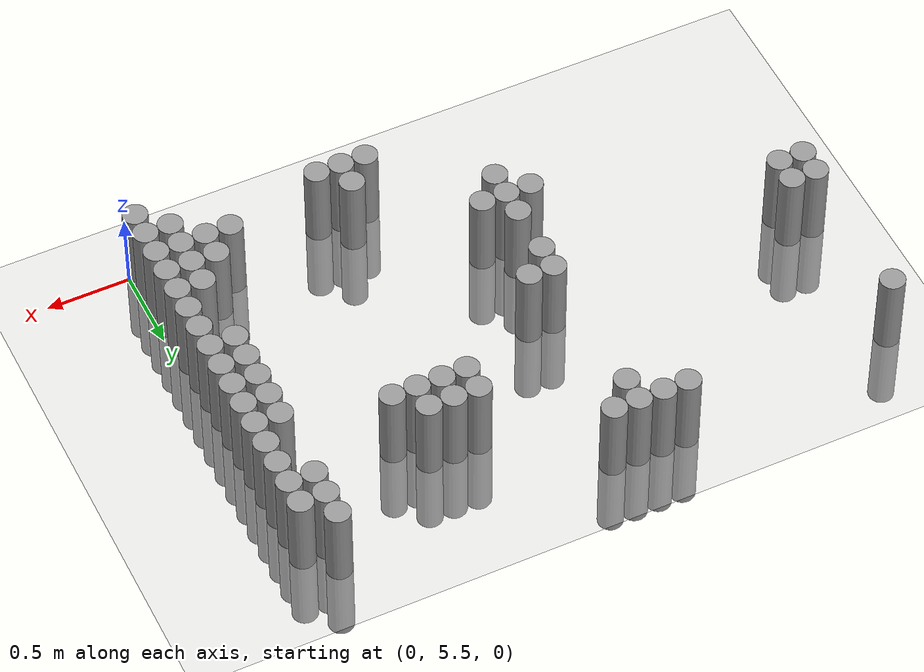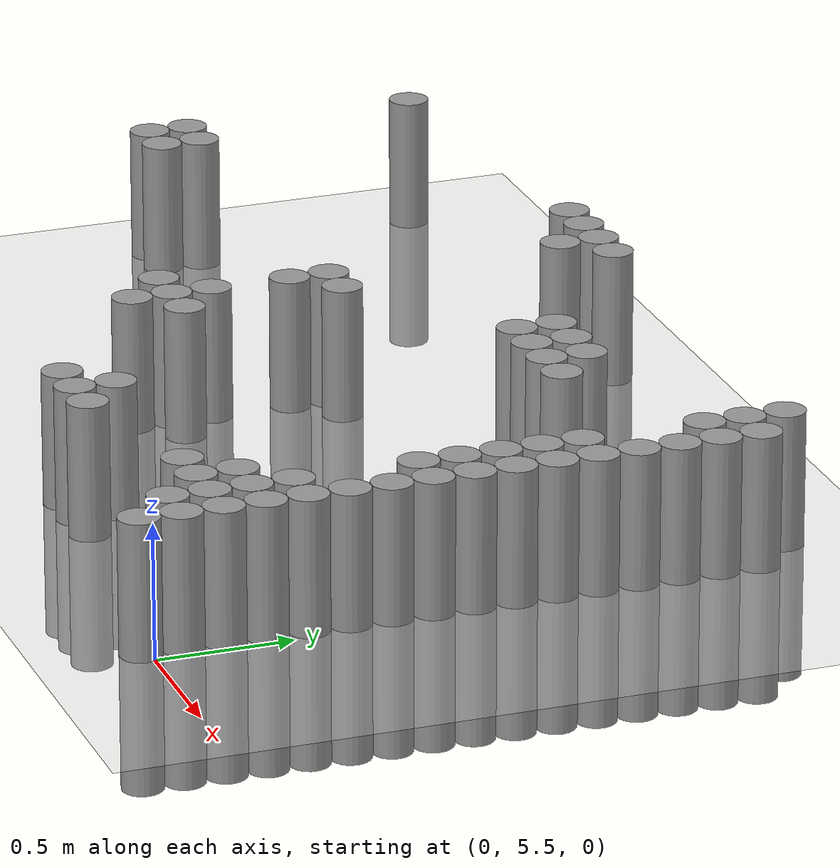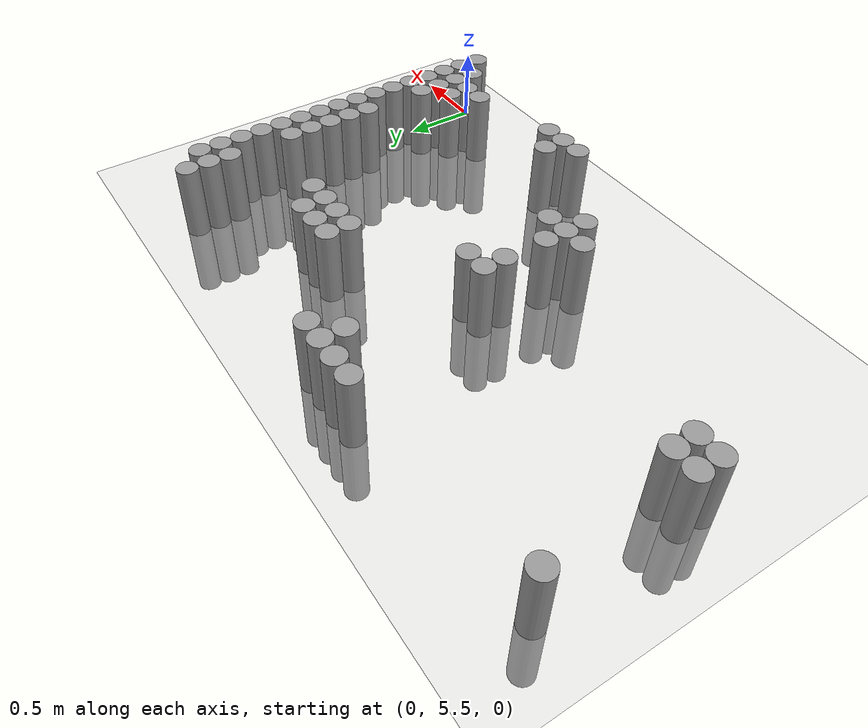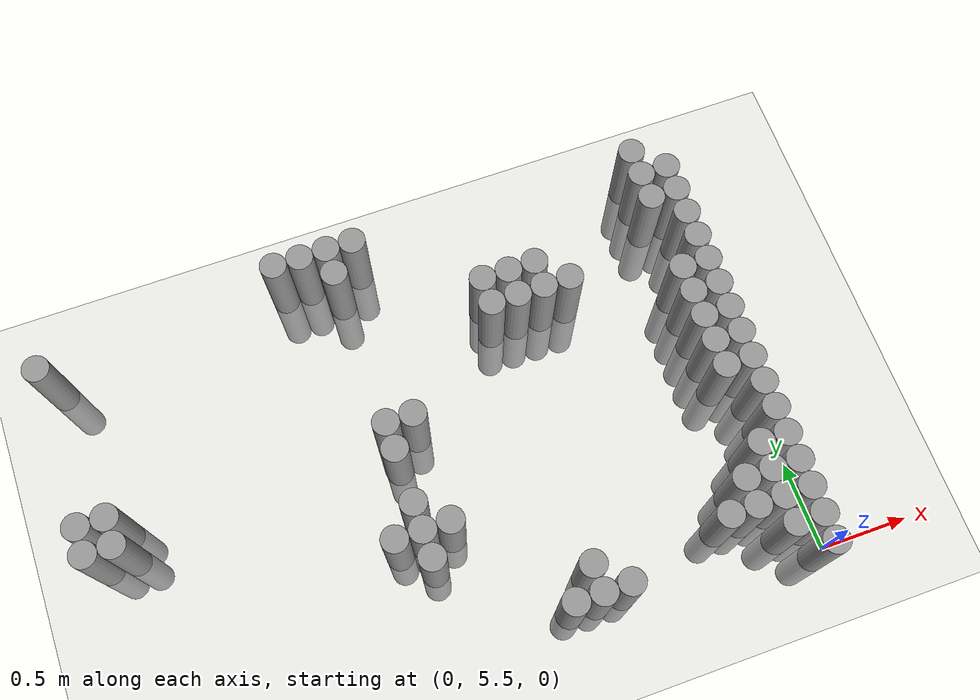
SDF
<sdf version="1.6">
 <world name="default">
  <model name="ground_plane">
   <static>1</static>
   <static>1</static>
   <link name="link">
    <collision name="collision">
     <geometry><plane><normal>0 0 1</normal><size>100 100</size></plane></geometry>
     <surface><friction><ode><mu>100</mu><mu2>50</mu2></ode></friction></surface>
    </collision>
    <visual name="visual">
     <cast_shadows>0</cast_shadows>
     <geometry><plane><normal>0 0 1</normal><size>100 100</size></plane></geometry>
     <material>
      <script><uri>file://media/materials/scripts/gazebo.material</uri><name>Gazebo/Grey</name></script>
     </material>
    </visual>
   </link>
  </model>
  <model name="unit_cylinder_171">
   <static>1</static>
   <pose>-3.675000 6.675000 0.000000 0.000000 0.000000 0.000000</pose>
   <link name="link">
    <inertial>
     <mass>1</mass>
     <inertia><ixx>0.145833</ixx><ixy>0</ixy><ixz>0</ixz><iyy>0.145833</iyy><iyz>0</iyz><izz>0.125</izz></inertia>
    </inertial>
    <collision name="collision">
     <geometry><cylinder><radius>0.075000</radius><length>1</length></cylinder></geometry>
    </collision>
    <visual name="visual">
     <geometry><cylinder><radius>0.075000</radius><length>1</length></cylinder></geometry>
     <material>
      <script><name>Gazebo/Grey</name><uri>file://media/materials/scripts/gazebo.material</uri></script>
     </material>
    </visual>
   </link>
  </model>
  <model name="unit_cylinder_172">
   <static>1</static>
   <pose>-3.675000 6.825000 0.000000 0.000000 0.000000 0.000000</pose>
   <link name="link">
    <inertial>
     <mass>1</mass>
     <inertia><ixx>0.145833</ixx><ixy>0</ixy><ixz>0</ixz><iyy>0.145833</iyy><iyz>0</iyz><izz>0.125</izz></inertia>
    </inertial>
    <collision name="collision">
     <geometry><cylinder><radius>0.075000</radius><length>1</length></cylinder></geometry>
    </collision>
    <visual name="visual">
     <geometry><cylinder><radius>0.075000</radius><length>1</length></cylinder></geometry>
     <material>
      <script><name>Gazebo/Grey</name><uri>file://media/materials/scripts/gazebo.material</uri></script>
     </material>
    </visual>
   </link>
  </model>
  <model name="unit_cylinder_173">
   <static>1</static>
   <pose>-3.675000 7.725000 0.000000 0.000000 0.000000 0.000000</pose>
   <link name="link">
    <inertial>
     <mass>1</mass>
     <inertia><ixx>0.145833</ixx><ixy>0</ixy><ixz>0</ixz><iyy>0.145833</iyy><iyz>0</iyz><izz>0.125</izz></inertia>
    </inertial>
    <collision name="collision">
     <geometry><cylinder><radius>0.075000</radius><length>1</length></cylinder></geometry>
    </collision>
    <visual name="visual">
     <geometry><cylinder><radius>0.075000</radius><length>1</length></cylinder></geometry>
     <material>
      <script><name>Gazebo/Grey</name><uri>file://media/materials/scripts/gazebo.material</uri></script>
     </material>
    </visual>
   </link>
  </model>
  <model name="unit_cylinder_177">
   <static>1</static>
   <pose>-3.525000 6.675000 0.000000 0.000000 0.000000 0.000000</pose>
   <link name="link">
    <inertial>
     <mass>1</mass>
     <inertia><ixx>0.145833</ixx><ixy>0</ixy><ixz>0</ixz><iyy>0.145833</iyy><iyz>0</iyz><izz>0.125</izz></inertia>
    </inertial>
    <collision name="collision">
     <geometry><cylinder><radius>0.075000</radius><length>1</length></cylinder></geometry>
    </collision>
    <visual name="visual">
     <geometry><cylinder><radius>0.075000</radius><length>1</length></cylinder></geometry>
     <material>
      <script><name>Gazebo/Grey</name><uri>file://media/materials/scripts/gazebo.material</uri></script>
     </material>
    </visual>
   </link>
  </model>
  <model name="unit_cylinder_178">
   <static>1</static>
   <pose>-3.525000 6.825000 0.000000 0.000000 0.000000 0.000000</pose>
   <link name="link">
    <inertial>
     <mass>1</mass>
     <inertia><ixx>0.145833</ixx><ixy>0</ixy><ixz>0</ixz><iyy>0.145833</iyy><iyz>0</iyz><izz>0.125</izz></inertia>
    </inertial>
    <collision name="collision">
     <geometry><cylinder><radius>0.075000</radius><length>1</length></cylinder></geometry>
    </collision>
    <visual name="visual">
     <geometry><cylinder><radius>0.075000</radius><length>1</length></cylinder></geometry>
     <material>
      <script><name>Gazebo/Grey</name><uri>file://media/materials/scripts/gazebo.material</uri></script>
     </material>
    </visual>
   </link>
  </model>
  <model name="unit_cylinder_192">
   <static>1</static>
   <pose>-2.325000 7.875000 0.000000 0.000000 0.000000 0.000000</pose>
   <link name="link">
    <inertial>
     <mass>1</mass>
     <inertia><ixx>0.145833</ixx><ixy>0</ixy><ixz>0</ixz><iyy>0.145833</iyy><iyz>0</iyz><izz>0.125</izz></inertia>
    </inertial>
    <collision name="collision">
     <geometry><cylinder><radius>0.075000</radius><length>1</length></cylinder></geometry>
    </collision>
    <visual name="visual">
     <geometry><cylinder><radius>0.075000</radius><length>1</length></cylinder></geometry>
     <material>
      <script><name>Gazebo/Grey</name><uri>file://media/materials/scripts/gazebo.material</uri></script>
     </material>
    </visual>
   </link>
  </model>
  <model name="unit_cylinder_195">
   <static>1</static>
   <pose>-2.175000 6.225000 0.000000 0.000000 0.000000 0.000000</pose>
   <link name="link">
    <inertial>
     <mass>1</mass>
     <inertia><ixx>0.145833</ixx><ixy>0</ixy><ixz>0</ixz><iyy>0.145833</iyy><iyz>0</iyz><izz>0.125</izz></inertia>
    </inertial>
    <collision name="collision">
     <geometry><cylinder><radius>0.075000</radius><length>1</length></cylinder></geometry>
    </collision>
    <visual name="visual">
     <geometry><cylinder><radius>0.075000</radius><length>1</length></cylinder></geometry>
     <material>
      <script><name>Gazebo/Grey</name><uri>file://media/materials/scripts/gazebo.material</uri></script>
     </material>
    </visual>
   </link>
  </model>
  <model name="unit_cylinder_196">
   <static>1</static>
   <pose>-2.175000 7.875000 0.000000 0.000000 0.000000 0.000000</pose>
   <link name="link">
    <inertial>
     <mass>1</mass>
     <inertia><ixx>0.145833</ixx><ixy>0</ixy><ixz>0</ixz><iyy>0.145833</iyy><iyz>0</iyz><izz>0.125</izz></inertia>
    </inertial>
    <collision name="collision">
     <geometry><cylinder><radius>0.075000</radius><length>1</length></cylinder></geometry>
    </collision>
    <visual name="visual">
     <geometry><cylinder><radius>0.075000</radius><length>1</length></cylinder></geometry>
     <material>
      <script><name>Gazebo/Grey</name><uri>file://media/materials/scripts/gazebo.material</uri></script>
     </material>
    </visual>
   </link>
  </model>
  <model name="unit_cylinder_200">
   <static>1</static>
   <pose>-2.025000 6.075000 0.000000 0.000000 0.000000 0.000000</pose>
   <link name="link">
    <inertial>
     <mass>1</mass>
     <inertia><ixx>0.145833</ixx><ixy>0</ixy><ixz>0</ixz><iyy>0.145833</iyy><iyz>0</iyz><izz>0.125</izz></inertia>
    </inertial>
    <collision name="collision">
     <geometry><cylinder><radius>0.075000</radius><length>1</length></cylinder></geometry>
    </collision>
    <visual name="visual">
     <geometry><cylinder><radius>0.075000</radius><length>1</length></cylinder></geometry>
     <material>
      <script><name>Gazebo/Grey</name><uri>file://media/materials/scripts/gazebo.material</uri></script>
     </material>
    </visual>
   </link>
  </model>
  <model name="unit_cylinder_201">
   <static>1</static>
   <pose>-2.025000 6.225000 0.000000 0.000000 0.000000 0.000000</pose>
   <link name="link">
    <inertial>
     <mass>1</mass>
     <inertia><ixx>0.145833</ixx><ixy>0</ixy><ixz>0</ixz><iyy>0.145833</iyy><iyz>0</iyz><izz>0.125</izz></inertia>
    </inertial>
    <collision name="collision">
     <geometry><cylinder><radius>0.075000</radius><length>1</length></cylinder></geometry>
    </collision>
    <visual name="visual">
     <geometry><cylinder><radius>0.075000</radius><length>1</length></cylinder></geometry>
     <material>
      <script><name>Gazebo/Grey</name><uri>file://media/materials/scripts/gazebo.material</uri></script>
     </material>
    </visual>
   </link>
  </model>
  <model name="unit_cylinder_202">
   <static>1</static>
   <pose>-2.025000 6.375000 0.000000 0.000000 0.000000 0.000000</pose>
   <link name="link">
    <inertial>
     <mass>1</mass>
     <inertia><ixx>0.145833</ixx><ixy>0</ixy><ixz>0</ixz><iyy>0.145833</iyy><iyz>0</iyz><izz>0.125</izz></inertia>
    </inertial>
    <collision name="collision">
     <geometry><cylinder><radius>0.075000</radius><length>1</length></cylinder></geometry>
    </collision>
    <visual name="visual">
     <geometry><cylinder><radius>0.075000</radius><length>1</length></cylinder></geometry>
     <material>
      <script><name>Gazebo/Grey</name><uri>file://media/materials/scripts/gazebo.material</uri></script>
     </material>
    </visual>
   </link>
  </model>
  <model name="unit_cylinder_203">
   <static>1</static>
   <pose>-2.025000 6.675000 0.000000 0.000000 0.000000 0.000000</pose>
   <link name="link">
    <inertial>
     <mass>1</mass>
     <inertia><ixx>0.145833</ixx><ixy>0</ixy><ixz>0</ixz><iyy>0.145833</iyy><iyz>0</iyz><izz>0.125</izz></inertia>
    </inertial>
    <collision name="collision">
     <geometry><cylinder><radius>0.075000</radius><length>1</length></cylinder></geometry>
    </collision>
    <visual name="visual">
     <geometry><cylinder><radius>0.075000</radius><length>1</length></cylinder></geometry>
     <material>
      <script><name>Gazebo/Grey</name><uri>file://media/materials/scripts/gazebo.material</uri></script>
     </material>
    </visual>
   </link>
  </model>
  <model name="unit_cylinder_204">
   <static>1</static>
   <pose>-2.025000 6.825000 0.000000 0.000000 0.000000 0.000000</pose>
   <link name="link">
    <inertial>
     <mass>1</mass>
     <inertia><ixx>0.145833</ixx><ixy>0</ixy><ixz>0</ixz><iyy>0.145833</iyy><iyz>0</iyz><izz>0.125</izz></inertia>
    </inertial>
    <collision name="collision">
     <geometry><cylinder><radius>0.075000</radius><length>1</length></cylinder></geometry>
    </collision>
    <visual name="visual">
     <geometry><cylinder><radius>0.075000</radius><length>1</length></cylinder></geometry>
     <material>
      <script><name>Gazebo/Grey</name><uri>file://media/materials/scripts/gazebo.material</uri></script>
     </material>
    </visual>
   </link>
  </model>
  <model name="unit_cylinder_205">
   <static>1</static>
   <pose>-2.025000 7.725000 0.000000 0.000000 0.000000 0.000000</pose>
   <link name="link">
    <inertial>
     <mass>1</mass>
     <inertia><ixx>0.145833</ixx><ixy>0</ixy><ixz>0</ixz><iyy>0.145833</iyy><iyz>0</iyz><izz>0.125</izz></inertia>
    </inertial>
    <collision name="collision">
     <geometry><cylinder><radius>0.075000</radius><length>1</length></cylinder></geometry>
    </collision>
    <visual name="visual">
     <geometry><cylinder><radius>0.075000</radius><length>1</length></cylinder></geometry>
     <material>
      <script><name>Gazebo/Grey</name><uri>file://media/materials/scripts/gazebo.material</uri></script>
     </material>
    </visual>
   </link>
  </model>
  <model name="unit_cylinder_206">
   <static>1</static>
   <pose>-2.025000 7.875000 0.000000 0.000000 0.000000 0.000000</pose>
   <link name="link">
    <inertial>
     <mass>1</mass>
     <inertia><ixx>0.145833</ixx><ixy>0</ixy><ixz>0</ixz><iyy>0.145833</iyy><iyz>0</iyz><izz>0.125</izz></inertia>
    </inertial>
    <collision name="collision">
     <geometry><cylinder><radius>0.075000</radius><length>1</length></cylinder></geometry>
    </collision>
    <visual name="visual">
     <geometry><cylinder><radius>0.075000</radius><length>1</length></cylinder></geometry>
     <material>
      <script><name>Gazebo/Grey</name><uri>file://media/materials/scripts/gazebo.material</uri></script>
     </material>
    </visual>
   </link>
  </model>
  <model name="unit_cylinder_209">
   <static>1</static>
   <pose>-1.875000 6.225000 0.000000 0.000000 0.000000 0.000000</pose>
   <link name="link">
    <inertial>
     <mass>1</mass>
     <inertia><ixx>0.145833</ixx><ixy>0</ixy><ixz>0</ixz><iyy>0.145833</iyy><iyz>0</iyz><izz>0.125</izz></inertia>
    </inertial>
    <collision name="collision">
     <geometry><cylinder><radius>0.075000</radius><length>1</length></cylinder></geometry>
    </collision>
    <visual name="visual">
     <geometry><cylinder><radius>0.075000</radius><length>1</length></cylinder></geometry>
     <material>
      <script><name>Gazebo/Grey</name><uri>file://media/materials/scripts/gazebo.material</uri></script>
     </material>
    </visual>
   </link>
  </model>
  <model name="unit_cylinder_210">
   <static>1</static>
   <pose>-1.875000 6.825000 0.000000 0.000000 0.000000 0.000000</pose>
   <link name="link">
    <inertial>
     <mass>1</mass>
     <inertia><ixx>0.145833</ixx><ixy>0</ixy><ixz>0</ixz><iyy>0.145833</iyy><iyz>0</iyz><izz>0.125</izz></inertia>
    </inertial>
    <collision name="collision">
     <geometry><cylinder><radius>0.075000</radius><length>1</length></cylinder></geometry>
    </collision>
    <visual name="visual">
     <geometry><cylinder><radius>0.075000</radius><length>1</length></cylinder></geometry>
     <material>
      <script><name>Gazebo/Grey</name><uri>file://media/materials/scripts/gazebo.material</uri></script>
     </material>
    </visual>
   </link>
  </model>
  <model name="unit_cylinder_211">
   <static>1</static>
   <pose>-1.875000 7.875000 0.000000 0.000000 0.000000 0.000000</pose>
   <link name="link">
    <inertial>
     <mass>1</mass>
     <inertia><ixx>0.145833</ixx><ixy>0</ixy><ixz>0</ixz><iyy>0.145833</iyy><iyz>0</iyz><izz>0.125</izz></inertia>
    </inertial>
    <collision name="collision">
     <geometry><cylinder><radius>0.075000</radius><length>1</length></cylinder></geometry>
    </collision>
    <visual name="visual">
     <geometry><cylinder><radius>0.075000</radius><length>1</length></cylinder></geometry>
     <material>
      <script><name>Gazebo/Grey</name><uri>file://media/materials/scripts/gazebo.material</uri></script>
     </material>
    </visual>
   </link>
  </model>
  <model name="unit_cylinder_225">
   <static>1</static>
   <pose>-1.425000 5.625000 0.000000 0.000000 0.000000 0.000000</pose>
   <link name="link">
    <inertial>
     <mass>1</mass>
     <inertia><ixx>0.145833</ixx><ixy>0</ixy><ixz>0</ixz><iyy>0.145833</iyy><iyz>0</iyz><izz>0.125</izz></inertia>
    </inertial>
    <collision name="collision">
     <geometry><cylinder><radius>0.075000</radius><length>1</length></cylinder></geometry>
    </collision>
    <visual name="visual">
     <geometry><cylinder><radius>0.075000</radius><length>1</length></cylinder></geometry>
     <material>
      <script><name>Gazebo/Grey</name><uri>file://media/materials/scripts/gazebo.material</uri></script>
     </material>
    </visual>
   </link>
  </model>
  <model name="unit_cylinder_229">
   <static>1</static>
   <pose>-1.275000 5.625000 0.000000 0.000000 0.000000 0.000000</pose>
   <link name="link">
    <inertial>
     <mass>1</mass>
     <inertia><ixx>0.145833</ixx><ixy>0</ixy><ixz>0</ixz><iyy>0.145833</iyy><iyz>0</iyz><izz>0.125</izz></inertia>
    </inertial>
    <collision name="collision">
     <geometry><cylinder><radius>0.075000</radius><length>1</length></cylinder></geometry>
    </collision>
    <visual name="visual">
     <geometry><cylinder><radius>0.075000</radius><length>1</length></cylinder></geometry>
     <material>
      <script><name>Gazebo/Grey</name><uri>file://media/materials/scripts/gazebo.material</uri></script>
     </material>
    </visual>
   </link>
  </model>
  <model name="unit_cylinder_230">
   <static>1</static>
   <pose>-1.275000 5.775000 0.000000 0.000000 0.000000 0.000000</pose>
   <link name="link">
    <inertial>
     <mass>1</mass>
     <inertia><ixx>0.145833</ixx><ixy>0</ixy><ixz>0</ixz><iyy>0.145833</iyy><iyz>0</iyz><izz>0.125</izz></inertia>
    </inertial>
    <collision name="collision">
     <geometry><cylinder><radius>0.075000</radius><length>1</length></cylinder></geometry>
    </collision>
    <visual name="visual">
     <geometry><cylinder><radius>0.075000</radius><length>1</length></cylinder></geometry>
     <material>
      <script><name>Gazebo/Grey</name><uri>file://media/materials/scripts/gazebo.material</uri></script>
     </material>
    </visual>
   </link>
  </model>
  <model name="unit_cylinder_231">
   <static>1</static>
   <pose>-1.275000 7.275000 0.000000 0.000000 0.000000 0.000000</pose>
   <link name="link">
    <inertial>
     <mass>1</mass>
     <inertia><ixx>0.145833</ixx><ixy>0</ixy><ixz>0</ixz><iyy>0.145833</iyy><iyz>0</iyz><izz>0.125</izz></inertia>
    </inertial>
    <collision name="collision">
     <geometry><cylinder><radius>0.075000</radius><length>1</length></cylinder></geometry>
    </collision>
    <visual name="visual">
     <geometry><cylinder><radius>0.075000</radius><length>1</length></cylinder></geometry>
     <material>
      <script><name>Gazebo/Grey</name><uri>file://media/materials/scripts/gazebo.material</uri></script>
     </material>
    </visual>
   </link>
  </model>
  <model name="unit_cylinder_232">
   <static>1</static>
   <pose>-1.275000 7.425000 0.000000 0.000000 0.000000 0.000000</pose>
   <link name="link">
    <inertial>
     <mass>1</mass>
     <inertia><ixx>0.145833</ixx><ixy>0</ixy><ixz>0</ixz><iyy>0.145833</iyy><iyz>0</iyz><izz>0.125</izz></inertia>
    </inertial>
    <collision name="collision">
     <geometry><cylinder><radius>0.075000</radius><length>1</length></cylinder></geometry>
    </collision>
    <visual name="visual">
     <geometry><cylinder><radius>0.075000</radius><length>1</length></cylinder></geometry>
     <material>
      <script><name>Gazebo/Grey</name><uri>file://media/materials/scripts/gazebo.material</uri></script>
     </material>
    </visual>
   </link>
  </model>
  <model name="unit_cylinder_236">
   <static>1</static>
   <pose>-1.125000 5.625000 0.000000 0.000000 0.000000 0.000000</pose>
   <link name="link">
    <inertial>
     <mass>1</mass>
     <inertia><ixx>0.145833</ixx><ixy>0</ixy><ixz>0</ixz><iyy>0.145833</iyy><iyz>0</iyz><izz>0.125</izz></inertia>
    </inertial>
    <collision name="collision">
     <geometry><cylinder><radius>0.075000</radius><length>1</length></cylinder></geometry>
    </collision>
    <visual name="visual">
     <geometry><cylinder><radius>0.075000</radius><length>1</length></cylinder></geometry>
     <material>
      <script><name>Gazebo/Grey</name><uri>file://media/materials/scripts/gazebo.material</uri></script>
     </material>
    </visual>
   </link>
  </model>
  <model name="unit_cylinder_237">
   <static>1</static>
   <pose>-1.125000 7.275000 0.000000 0.000000 0.000000 0.000000</pose>
   <link name="link">
    <inertial>
     <mass>1</mass>
     <inertia><ixx>0.145833</ixx><ixy>0</ixy><ixz>0</ixz><iyy>0.145833</iyy><iyz>0</iyz><izz>0.125</izz></inertia>
    </inertial>
    <collision name="collision">
     <geometry><cylinder><radius>0.075000</radius><length>1</length></cylinder></geometry>
    </collision>
    <visual name="visual">
     <geometry><cylinder><radius>0.075000</radius><length>1</length></cylinder></geometry>
     <material>
      <script><name>Gazebo/Grey</name><uri>file://media/materials/scripts/gazebo.material</uri></script>
     </material>
    </visual>
   </link>
  </model>
  <model name="unit_cylinder_238">
   <static>1</static>
   <pose>-1.125000 7.425000 0.000000 0.000000 0.000000 0.000000</pose>
   <link name="link">
    <inertial>
     <mass>1</mass>
     <inertia><ixx>0.145833</ixx><ixy>0</ixy><ixz>0</ixz><iyy>0.145833</iyy><iyz>0</iyz><izz>0.125</izz></inertia>
    </inertial>
    <collision name="collision">
     <geometry><cylinder><radius>0.075000</radius><length>1</length></cylinder></geometry>
    </collision>
    <visual name="visual">
     <geometry><cylinder><radius>0.075000</radius><length>1</length></cylinder></geometry>
     <material>
      <script><name>Gazebo/Grey</name><uri>file://media/materials/scripts/gazebo.material</uri></script>
     </material>
    </visual>
   </link>
  </model>
  <model name="unit_cylinder_242">
   <static>1</static>
   <pose>-0.975000 7.275000 0.000000 0.000000 0.000000 0.000000</pose>
   <link name="link">
    <inertial>
     <mass>1</mass>
     <inertia><ixx>0.145833</ixx><ixy>0</ixy><ixz>0</ixz><iyy>0.145833</iyy><iyz>0</iyz><izz>0.125</izz></inertia>
    </inertial>
    <collision name="collision">
     <geometry><cylinder><radius>0.075000</radius><length>1</length></cylinder></geometry>
    </collision>
    <visual name="visual">
     <geometry><cylinder><radius>0.075000</radius><length>1</length></cylinder></geometry>
     <material>
      <script><name>Gazebo/Grey</name><uri>file://media/materials/scripts/gazebo.material</uri></script>
     </material>
    </visual>
   </link>
  </model>
  <model name="unit_cylinder_243">
   <static>1</static>
   <pose>-0.975000 7.425000 0.000000 0.000000 0.000000 0.000000</pose>
   <link name="link">
    <inertial>
     <mass>1</mass>
     <inertia><ixx>0.145833</ixx><ixy>0</ixy><ixz>0</ixz><iyy>0.145833</iyy><iyz>0</iyz><izz>0.125</izz></inertia>
    </inertial>
    <collision name="collision">
     <geometry><cylinder><radius>0.075000</radius><length>1</length></cylinder></geometry>
    </collision>
    <visual name="visual">
     <geometry><cylinder><radius>0.075000</radius><length>1</length></cylinder></geometry>
     <material>
      <script><name>Gazebo/Grey</name><uri>file://media/materials/scripts/gazebo.material</uri></script>
     </material>
    </visual>
   </link>
  </model>
  <model name="unit_cylinder_245">
   <static>1</static>
   <pose>-0.825000 7.275000 0.000000 0.000000 0.000000 0.000000</pose>
   <link name="link">
    <inertial>
     <mass>1</mass>
     <inertia><ixx>0.145833</ixx><ixy>0</ixy><ixz>0</ixz><iyy>0.145833</iyy><iyz>0</iyz><izz>0.125</izz></inertia>
    </inertial>
    <collision name="collision">
     <geometry><cylinder><radius>0.075000</radius><length>1</length></cylinder></geometry>
    </collision>
    <visual name="visual">
     <geometry><cylinder><radius>0.075000</radius><length>1</length></cylinder></geometry>
     <material>
      <script><name>Gazebo/Grey</name><uri>file://media/materials/scripts/gazebo.material</uri></script>
     </material>
    </visual>
   </link>
  </model>
  <model name="unit_cylinder_246">
   <static>1</static>
   <pose>-0.525000 5.775000 0.000000 0.000000 0.000000 0.000000</pose>
   <link name="link">
    <inertial>
     <mass>1</mass>
     <inertia><ixx>0.145833</ixx><ixy>0</ixy><ixz>0</ixz><iyy>0.145833</iyy><iyz>0</iyz><izz>0.125</izz></inertia>
    </inertial>
    <collision name="collision">
     <geometry><cylinder><radius>0.075000</radius><length>1</length></cylinder></geometry>
    </collision>
    <visual name="visual">
     <geometry><cylinder><radius>0.075000</radius><length>1</length></cylinder></geometry>
     <material>
      <script><name>Gazebo/Grey</name><uri>file://media/materials/scripts/gazebo.material</uri></script>
     </material>
    </visual>
   </link>
  </model>
  <model name="unit_cylinder_248">
   <static>1</static>
   <pose>-0.375000 5.775000 0.000000 0.000000 0.000000 0.000000</pose>
   <link name="link">
    <inertial>
     <mass>1</mass>
     <inertia><ixx>0.145833</ixx><ixy>0</ixy><ixz>0</ixz><iyy>0.145833</iyy><iyz>0</iyz><izz>0.125</izz></inertia>
    </inertial>
    <collision name="collision">
     <geometry><cylinder><radius>0.075000</radius><length>1</length></cylinder></geometry>
    </collision>
    <visual name="visual">
     <geometry><cylinder><radius>0.075000</radius><length>1</length></cylinder></geometry>
     <material>
      <script><name>Gazebo/Grey</name><uri>file://media/materials/scripts/gazebo.material</uri></script>
     </material>
    </visual>
   </link>
  </model>
  <model name="unit_cylinder_249">
   <static>1</static>
   <pose>-0.375000 5.925000 0.000000 0.000000 0.000000 0.000000</pose>
   <link name="link">
    <inertial>
     <mass>1</mass>
     <inertia><ixx>0.145833</ixx><ixy>0</ixy><ixz>0</ixz><iyy>0.145833</iyy><iyz>0</iyz><izz>0.125</izz></inertia>
    </inertial>
    <collision name="collision">
     <geometry><cylinder><radius>0.075000</radius><length>1</length></cylinder></geometry>
    </collision>
    <visual name="visual">
     <geometry><cylinder><radius>0.075000</radius><length>1</length></cylinder></geometry>
     <material>
      <script><name>Gazebo/Grey</name><uri>file://media/materials/scripts/gazebo.material</uri></script>
     </material>
    </visual>
   </link>
  </model>
  <model name="unit_cylinder_254">
   <static>1</static>
   <pose>-0.225000 5.625000 0.000000 0.000000 0.000000 0.000000</pose>
   <link name="link">
    <inertial>
     <mass>1</mass>
     <inertia><ixx>0.145833</ixx><ixy>0</ixy><ixz>0</ixz><iyy>0.145833</iyy><iyz>0</iyz><izz>0.125</izz></inertia>
    </inertial>
    <collision name="collision">
     <geometry><cylinder><radius>0.075000</radius><length>1</length></cylinder></geometry>
    </collision>
    <visual name="visual">
     <geometry><cylinder><radius>0.075000</radius><length>1</length></cylinder></geometry>
     <material>
      <script><name>Gazebo/Grey</name><uri>file://media/materials/scripts/gazebo.material</uri></script>
     </material>
    </visual>
   </link>
  </model>
  <model name="unit_cylinder_255">
   <static>1</static>
   <pose>-0.225000 5.775000 0.000000 0.000000 0.000000 0.000000</pose>
   <link name="link">
    <inertial>
     <mass>1</mass>
     <inertia><ixx>0.145833</ixx><ixy>0</ixy><ixz>0</ixz><iyy>0.145833</iyy><iyz>0</iyz><izz>0.125</izz></inertia>
    </inertial>
    <collision name="collision">
     <geometry><cylinder><radius>0.075000</radius><length>1</length></cylinder></geometry>
    </collision>
    <visual name="visual">
     <geometry><cylinder><radius>0.075000</radius><length>1</length></cylinder></geometry>
     <material>
      <script><name>Gazebo/Grey</name><uri>file://media/materials/scripts/gazebo.material</uri></script>
     </material>
    </visual>
   </link>
  </model>
  <model name="unit_cylinder_256">
   <static>1</static>
   <pose>-0.225000 5.925000 0.000000 0.000000 0.000000 0.000000</pose>
   <link name="link">
    <inertial>
     <mass>1</mass>
     <inertia><ixx>0.145833</ixx><ixy>0</ixy><ixz>0</ixz><iyy>0.145833</iyy><iyz>0</iyz><izz>0.125</izz></inertia>
    </inertial>
    <collision name="collision">
     <geometry><cylinder><radius>0.075000</radius><length>1</length></cylinder></geometry>
    </collision>
    <visual name="visual">
     <geometry><cylinder><radius>0.075000</radius><length>1</length></cylinder></geometry>
     <material>
      <script><name>Gazebo/Grey</name><uri>file://media/materials/scripts/gazebo.material</uri></script>
     </material>
    </visual>
   </link>
  </model>
  <model name="unit_cylinder_257">
   <static>1</static>
   <pose>-0.225000 6.075000 0.000000 0.000000 0.000000 0.000000</pose>
   <link name="link">
    <inertial>
     <mass>1</mass>
     <inertia><ixx>0.145833</ixx><ixy>0</ixy><ixz>0</ixz><iyy>0.145833</iyy><iyz>0</iyz><izz>0.125</izz></inertia>
    </inertial>
    <collision name="collision">
     <geometry><cylinder><radius>0.075000</radius><length>1</length></cylinder></geometry>
    </collision>
    <visual name="visual">
     <geometry><cylinder><radius>0.075000</radius><length>1</length></cylinder></geometry>
     <material>
      <script><name>Gazebo/Grey</name><uri>file://media/materials/scripts/gazebo.material</uri></script>
     </material>
    </visual>
   </link>
  </model>
  <model name="unit_cylinder_258">
   <static>1</static>
   <pose>-0.225000 6.525000 0.000000 0.000000 0.000000 0.000000</pose>
   <link name="link">
    <inertial>
     <mass>1</mass>
     <inertia><ixx>0.145833</ixx><ixy>0</ixy><ixz>0</ixz><iyy>0.145833</iyy><iyz>0</iyz><izz>0.125</izz></inertia>
    </inertial>
    <collision name="collision">
     <geometry><cylinder><radius>0.075000</radius><length>1</length></cylinder></geometry>
    </collision>
    <visual name="visual">
     <geometry><cylinder><radius>0.075000</radius><length>1</length></cylinder></geometry>
     <material>
      <script><name>Gazebo/Grey</name><uri>file://media/materials/scripts/gazebo.material</uri></script>
     </material>
    </visual>
   </link>
  </model>
  <model name="unit_cylinder_259">
   <static>1</static>
   <pose>-0.225000 6.675000 0.000000 0.000000 0.000000 0.000000</pose>
   <link name="link">
    <inertial>
     <mass>1</mass>
     <inertia><ixx>0.145833</ixx><ixy>0</ixy><ixz>0</ixz><iyy>0.145833</iyy><iyz>0</iyz><izz>0.125</izz></inertia>
    </inertial>
    <collision name="collision">
     <geometry><cylinder><radius>0.075000</radius><length>1</length></cylinder></geometry>
    </collision>
    <visual name="visual">
     <geometry><cylinder><radius>0.075000</radius><length>1</length></cylinder></geometry>
     <material>
      <script><name>Gazebo/Grey</name><uri>file://media/materials/scripts/gazebo.material</uri></script>
     </material>
    </visual>
   </link>
  </model>
  <model name="unit_cylinder_260">
   <static>1</static>
   <pose>-0.225000 6.825000 0.000000 0.000000 0.000000 0.000000</pose>
   <link name="link">
    <inertial>
     <mass>1</mass>
     <inertia><ixx>0.145833</ixx><ixy>0</ixy><ixz>0</ixz><iyy>0.145833</iyy><iyz>0</iyz><izz>0.125</izz></inertia>
    </inertial>
    <collision name="collision">
     <geometry><cylinder><radius>0.075000</radius><length>1</length></cylinder></geometry>
    </collision>
    <visual name="visual">
     <geometry><cylinder><radius>0.075000</radius><length>1</length></cylinder></geometry>
     <material>
      <script><name>Gazebo/Grey</name><uri>file://media/materials/scripts/gazebo.material</uri></script>
     </material>
    </visual>
   </link>
  </model>
  <model name="unit_cylinder_261">
   <static>1</static>
   <pose>-0.225000 6.975000 0.000000 0.000000 0.000000 0.000000</pose>
   <link name="link">
    <inertial>
     <mass>1</mass>
     <inertia><ixx>0.145833</ixx><ixy>0</ixy><ixz>0</ixz><iyy>0.145833</iyy><iyz>0</iyz><izz>0.125</izz></inertia>
    </inertial>
    <collision name="collision">
     <geometry><cylinder><radius>0.075000</radius><length>1</length></cylinder></geometry>
    </collision>
    <visual name="visual">
     <geometry><cylinder><radius>0.075000</radius><length>1</length></cylinder></geometry>
     <material>
      <script><name>Gazebo/Grey</name><uri>file://media/materials/scripts/gazebo.material</uri></script>
     </material>
    </visual>
   </link>
  </model>
  <model name="unit_cylinder_262">
   <static>1</static>
   <pose>-0.225000 7.125000 0.000000 0.000000 0.000000 0.000000</pose>
   <link name="link">
    <inertial>
     <mass>1</mass>
     <inertia><ixx>0.145833</ixx><ixy>0</ixy><ixz>0</ixz><iyy>0.145833</iyy><iyz>0</iyz><izz>0.125</izz></inertia>
    </inertial>
    <collision name="collision">
     <geometry><cylinder><radius>0.075000</radius><length>1</length></cylinder></geometry>
    </collision>
    <visual name="visual">
     <geometry><cylinder><radius>0.075000</radius><length>1</length></cylinder></geometry>
     <material>
      <script><name>Gazebo/Grey</name><uri>file://media/materials/scripts/gazebo.material</uri></script>
     </material>
    </visual>
   </link>
  </model>
  <model name="unit_cylinder_263">
   <static>1</static>
   <pose>-0.225000 7.575000 0.000000 0.000000 0.000000 0.000000</pose>
   <link name="link">
    <inertial>
     <mass>1</mass>
     <inertia><ixx>0.145833</ixx><ixy>0</ixy><ixz>0</ixz><iyy>0.145833</iyy><iyz>0</iyz><izz>0.125</izz></inertia>
    </inertial>
    <collision name="collision">
     <geometry><cylinder><radius>0.075000</radius><length>1</length></cylinder></geometry>
    </collision>
    <visual name="visual">
     <geometry><cylinder><radius>0.075000</radius><length>1</length></cylinder></geometry>
     <material>
      <script><name>Gazebo/Grey</name><uri>file://media/materials/scripts/gazebo.material</uri></script>
     </material>
    </visual>
   </link>
  </model>
  <model name="unit_cylinder_264">
   <static>1</static>
   <pose>-0.225000 7.725000 0.000000 0.000000 0.000000 0.000000</pose>
   <link name="link">
    <inertial>
     <mass>1</mass>
     <inertia><ixx>0.145833</ixx><ixy>0</ixy><ixz>0</ixz><iyy>0.145833</iyy><iyz>0</iyz><izz>0.125</izz></inertia>
    </inertial>
    <collision name="collision">
     <geometry><cylinder><radius>0.075000</radius><length>1</length></cylinder></geometry>
    </collision>
    <visual name="visual">
     <geometry><cylinder><radius>0.075000</radius><length>1</length></cylinder></geometry>
     <material>
      <script><name>Gazebo/Grey</name><uri>file://media/materials/scripts/gazebo.material</uri></script>
     </material>
    </visual>
   </link>
  </model>
  <model name="unit_cylinder_265">
   <static>1</static>
   <pose>-0.225000 7.875000 0.000000 0.000000 0.000000 0.000000</pose>
   <link name="link">
    <inertial>
     <mass>1</mass>
     <inertia><ixx>0.145833</ixx><ixy>0</ixy><ixz>0</ixz><iyy>0.145833</iyy><iyz>0</iyz><izz>0.125</izz></inertia>
    </inertial>
    <collision name="collision">
     <geometry><cylinder><radius>0.075000</radius><length>1</length></cylinder></geometry>
    </collision>
    <visual name="visual">
     <geometry><cylinder><radius>0.075000</radius><length>1</length></cylinder></geometry>
     <material>
      <script><name>Gazebo/Grey</name><uri>file://media/materials/scripts/gazebo.material</uri></script>
     </material>
    </visual>
   </link>
  </model>
  <model name="unit_cylinder_274">
   <static>1</static>
   <pose>-0.075000 5.475000 0.000000 0.000000 0.000000 0.000000</pose>
   <link name="link">
    <inertial>
     <mass>1</mass>
     <inertia><ixx>0.145833</ixx><ixy>0</ixy><ixz>0</ixz><iyy>0.145833</iyy><iyz>0</iyz><izz>0.125</izz></inertia>
    </inertial>
    <collision name="collision">
     <geometry><cylinder><radius>0.075000</radius><length>1</length></cylinder></geometry>
    </collision>
    <visual name="visual">
     <geometry><cylinder><radius>0.075000</radius><length>1</length></cylinder></geometry>
     <material>
      <script><name>Gazebo/Grey</name><uri>file://media/materials/scripts/gazebo.material</uri></script>
     </material>
    </visual>
   </link>
  </model>
  <model name="unit_cylinder_275">
   <static>1</static>
   <pose>-0.075000 5.625000 0.000000 0.000000 0.000000 0.000000</pose>
   <link name="link">
    <inertial>
     <mass>1</mass>
     <inertia><ixx>0.145833</ixx><ixy>0</ixy><ixz>0</ixz><iyy>0.145833</iyy><iyz>0</iyz><izz>0.125</izz></inertia>
    </inertial>
    <collision name="collision">
     <geometry><cylinder><radius>0.075000</radius><length>1</length></cylinder></geometry>
    </collision>
    <visual name="visual">
     <geometry><cylinder><radius>0.075000</radius><length>1</length></cylinder></geometry>
     <material>
      <script><name>Gazebo/Grey</name><uri>file://media/materials/scripts/gazebo.material</uri></script>
     </material>
    </visual>
   </link>
  </model>
  <model name="unit_cylinder_276">
   <static>1</static>
   <pose>-0.075000 5.775000 0.000000 0.000000 0.000000 0.000000</pose>
   <link name="link">
    <inertial>
     <mass>1</mass>
     <inertia><ixx>0.145833</ixx><ixy>0</ixy><ixz>0</ixz><iyy>0.145833</iyy><iyz>0</iyz><izz>0.125</izz></inertia>
    </inertial>
    <collision name="collision">
     <geometry><cylinder><radius>0.075000</radius><length>1</length></cylinder></geometry>
    </collision>
    <visual name="visual">
     <geometry><cylinder><radius>0.075000</radius><length>1</length></cylinder></geometry>
     <material>
      <script><name>Gazebo/Grey</name><uri>file://media/materials/scripts/gazebo.material</uri></script>
     </material>
    </visual>
   </link>
  </model>
  <model name="unit_cylinder_277">
   <static>1</static>
   <pose>-0.075000 5.925000 0.000000 0.000000 0.000000 0.000000</pose>
   <link name="link">
    <inertial>
     <mass>1</mass>
     <inertia><ixx>0.145833</ixx><ixy>0</ixy><ixz>0</ixz><iyy>0.145833</iyy><iyz>0</iyz><izz>0.125</izz></inertia>
    </inertial>
    <collision name="collision">
     <geometry><cylinder><radius>0.075000</radius><length>1</length></cylinder></geometry>
    </collision>
    <visual name="visual">
     <geometry><cylinder><radius>0.075000</radius><length>1</length></cylinder></geometry>
     <material>
      <script><name>Gazebo/Grey</name><uri>file://media/materials/scripts/gazebo.material</uri></script>
     </material>
    </visual>
   </link>
  </model>
  <model name="unit_cylinder_278">
   <static>1</static>
   <pose>-0.075000 6.075000 0.000000 0.000000 0.000000 0.000000</pose>
   <link name="link">
    <inertial>
     <mass>1</mass>
     <inertia><ixx>0.145833</ixx><ixy>0</ixy><ixz>0</ixz><iyy>0.145833</iyy><iyz>0</iyz><izz>0.125</izz></inertia>
    </inertial>
    <collision name="collision">
     <geometry><cylinder><radius>0.075000</radius><length>1</length></cylinder></geometry>
    </collision>
    <visual name="visual">
     <geometry><cylinder><radius>0.075000</radius><length>1</length></cylinder></geometry>
     <material>
      <script><name>Gazebo/Grey</name><uri>file://media/materials/scripts/gazebo.material</uri></script>
     </material>
    </visual>
   </link>
  </model>
  <model name="unit_cylinder_279">
   <static>1</static>
   <pose>-0.075000 6.225000 0.000000 0.000000 0.000000 0.000000</pose>
   <link name="link">
    <inertial>
     <mass>1</mass>
     <inertia><ixx>0.145833</ixx><ixy>0</ixy><ixz>0</ixz><iyy>0.145833</iyy><iyz>0</iyz><izz>0.125</izz></inertia>
    </inertial>
    <collision name="collision">
     <geometry><cylinder><radius>0.075000</radius><length>1</length></cylinder></geometry>
    </collision>
    <visual name="visual">
     <geometry><cylinder><radius>0.075000</radius><length>1</length></cylinder></geometry>
     <material>
      <script><name>Gazebo/Grey</name><uri>file://media/materials/scripts/gazebo.material</uri></script>
     </material>
    </visual>
   </link>
  </model>
  <model name="unit_cylinder_280">
   <static>1</static>
   <pose>-0.075000 6.375000 0.000000 0.000000 0.000000 0.000000</pose>
   <link name="link">
    <inertial>
     <mass>1</mass>
     <inertia><ixx>0.145833</ixx><ixy>0</ixy><ixz>0</ixz><iyy>0.145833</iyy><iyz>0</iyz><izz>0.125</izz></inertia>
    </inertial>
    <collision name="collision">
     <geometry><cylinder><radius>0.075000</radius><length>1</length></cylinder></geometry>
    </collision>
    <visual name="visual">
     <geometry><cylinder><radius>0.075000</radius><length>1</length></cylinder></geometry>
     <material>
      <script><name>Gazebo/Grey</name><uri>file://media/materials/scripts/gazebo.material</uri></script>
     </material>
    </visual>
   </link>
  </model>
  <model name="unit_cylinder_281">
   <static>1</static>
   <pose>-0.075000 6.525000 0.000000 0.000000 0.000000 0.000000</pose>
   <link name="link">
    <inertial>
     <mass>1</mass>
     <inertia><ixx>0.145833</ixx><ixy>0</ixy><ixz>0</ixz><iyy>0.145833</iyy><iyz>0</iyz><izz>0.125</izz></inertia>
    </inertial>
    <collision name="collision">
     <geometry><cylinder><radius>0.075000</radius><length>1</length></cylinder></geometry>
    </collision>
    <visual name="visual">
     <geometry><cylinder><radius>0.075000</radius><length>1</length></cylinder></geometry>
     <material>
      <script><name>Gazebo/Grey</name><uri>file://media/materials/scripts/gazebo.material</uri></script>
     </material>
    </visual>
   </link>
  </model>
  <model name="unit_cylinder_282">
   <static>1</static>
   <pose>-0.075000 6.675000 0.000000 0.000000 0.000000 0.000000</pose>
   <link name="link">
    <inertial>
     <mass>1</mass>
     <inertia><ixx>0.145833</ixx><ixy>0</ixy><ixz>0</ixz><iyy>0.145833</iyy><iyz>0</iyz><izz>0.125</izz></inertia>
    </inertial>
    <collision name="collision">
     <geometry><cylinder><radius>0.075000</radius><length>1</length></cylinder></geometry>
    </collision>
    <visual name="visual">
     <geometry><cylinder><radius>0.075000</radius><length>1</length></cylinder></geometry>
     <material>
      <script><name>Gazebo/Grey</name><uri>file://media/materials/scripts/gazebo.material</uri></script>
     </material>
    </visual>
   </link>
  </model>
  <model name="unit_cylinder_283">
   <static>1</static>
   <pose>-0.075000 6.825000 0.000000 0.000000 0.000000 0.000000</pose>
   <link name="link">
    <inertial>
     <mass>1</mass>
     <inertia><ixx>0.145833</ixx><ixy>0</ixy><ixz>0</ixz><iyy>0.145833</iyy><iyz>0</iyz><izz>0.125</izz></inertia>
    </inertial>
    <collision name="collision">
     <geometry><cylinder><radius>0.075000</radius><length>1</length></cylinder></geometry>
    </collision>
    <visual name="visual">
     <geometry><cylinder><radius>0.075000</radius><length>1</length></cylinder></geometry>
     <material>
      <script><name>Gazebo/Grey</name><uri>file://media/materials/scripts/gazebo.material</uri></script>
     </material>
    </visual>
   </link>
  </model>
  <model name="unit_cylinder_284">
   <static>1</static>
   <pose>-0.075000 6.975000 0.000000 0.000000 0.000000 0.000000</pose>
   <link name="link">
    <inertial>
     <mass>1</mass>
     <inertia><ixx>0.145833</ixx><ixy>0</ixy><ixz>0</ixz><iyy>0.145833</iyy><iyz>0</iyz><izz>0.125</izz></inertia>
    </inertial>
    <collision name="collision">
     <geometry><cylinder><radius>0.075000</radius><length>1</length></cylinder></geometry>
    </collision>
    <visual name="visual">
     <geometry><cylinder><radius>0.075000</radius><length>1</length></cylinder></geometry>
     <material>
      <script><name>Gazebo/Grey</name><uri>file://media/materials/scripts/gazebo.material</uri></script>
     </material>
    </visual>
   </link>
  </model>
  <model name="unit_cylinder_285">
   <static>1</static>
   <pose>-0.075000 7.125000 0.000000 0.000000 0.000000 0.000000</pose>
   <link name="link">
    <inertial>
     <mass>1</mass>
     <inertia><ixx>0.145833</ixx><ixy>0</ixy><ixz>0</ixz><iyy>0.145833</iyy><iyz>0</iyz><izz>0.125</izz></inertia>
    </inertial>
    <collision name="collision">
     <geometry><cylinder><radius>0.075000</radius><length>1</length></cylinder></geometry>
    </collision>
    <visual name="visual">
     <geometry><cylinder><radius>0.075000</radius><length>1</length></cylinder></geometry>
     <material>
      <script><name>Gazebo/Grey</name><uri>file://media/materials/scripts/gazebo.material</uri></script>
     </material>
    </visual>
   </link>
  </model>
  <model name="unit_cylinder_286">
   <static>1</static>
   <pose>-0.075000 7.275000 0.000000 0.000000 0.000000 0.000000</pose>
   <link name="link">
    <inertial>
     <mass>1</mass>
     <inertia><ixx>0.145833</ixx><ixy>0</ixy><ixz>0</ixz><iyy>0.145833</iyy><iyz>0</iyz><izz>0.125</izz></inertia>
    </inertial>
    <collision name="collision">
     <geometry><cylinder><radius>0.075000</radius><length>1</length></cylinder></geometry>
    </collision>
    <visual name="visual">
     <geometry><cylinder><radius>0.075000</radius><length>1</length></cylinder></geometry>
     <material>
      <script><name>Gazebo/Grey</name><uri>file://media/materials/scripts/gazebo.material</uri></script>
     </material>
    </visual>
   </link>
  </model>
  <model name="unit_cylinder_287">
   <static>1</static>
   <pose>-0.075000 7.425000 0.000000 0.000000 0.000000 0.000000</pose>
   <link name="link">
    <inertial>
     <mass>1</mass>
     <inertia><ixx>0.145833</ixx><ixy>0</ixy><ixz>0</ixz><iyy>0.145833</iyy><iyz>0</iyz><izz>0.125</izz></inertia>
    </inertial>
    <collision name="collision">
     <geometry><cylinder><radius>0.075000</radius><length>1</length></cylinder></geometry>
    </collision>
    <visual name="visual">
     <geometry><cylinder><radius>0.075000</radius><length>1</length></cylinder></geometry>
     <material>
      <script><name>Gazebo/Grey</name><uri>file://media/materials/scripts/gazebo.material</uri></script>
     </material>
    </visual>
   </link>
  </model>
  <model name="unit_cylinder_288">
   <static>1</static>
   <pose>-0.075000 7.575000 0.000000 0.000000 0.000000 0.000000</pose>
   <link name="link">
    <inertial>
     <mass>1</mass>
     <inertia><ixx>0.145833</ixx><ixy>0</ixy><ixz>0</ixz><iyy>0.145833</iyy><iyz>0</iyz><izz>0.125</izz></inertia>
    </inertial>
    <collision name="collision">
     <geometry><cylinder><radius>0.075000</radius><length>1</length></cylinder></geometry>
    </collision>
    <visual name="visual">
     <geometry><cylinder><radius>0.075000</radius><length>1</length></cylinder></geometry>
     <material>
      <script><name>Gazebo/Grey</name><uri>file://media/materials/scripts/gazebo.material</uri></script>
     </material>
    </visual>
   </link>
  </model>
  <model name="unit_cylinder_289">
   <static>1</static>
   <pose>-0.075000 7.725000 0.000000 0.000000 0.000000 0.000000</pose>
   <link name="link">
    <inertial>
     <mass>1</mass>
     <inertia><ixx>0.145833</ixx><ixy>0</ixy><ixz>0</ixz><iyy>0.145833</iyy><iyz>0</iyz><izz>0.125</izz></inertia>
    </inertial>
    <collision name="collision">
     <geometry><cylinder><radius>0.075000</radius><length>1</length></cylinder></geometry>
    </collision>
    <visual name="visual">
     <geometry><cylinder><radius>0.075000</radius><length>1</length></cylinder></geometry>
     <material>
      <script><name>Gazebo/Grey</name><uri>file://media/materials/scripts/gazebo.material</uri></script>
     </material>
    </visual>
   </link>
  </model>
 </world>
</sdf>
